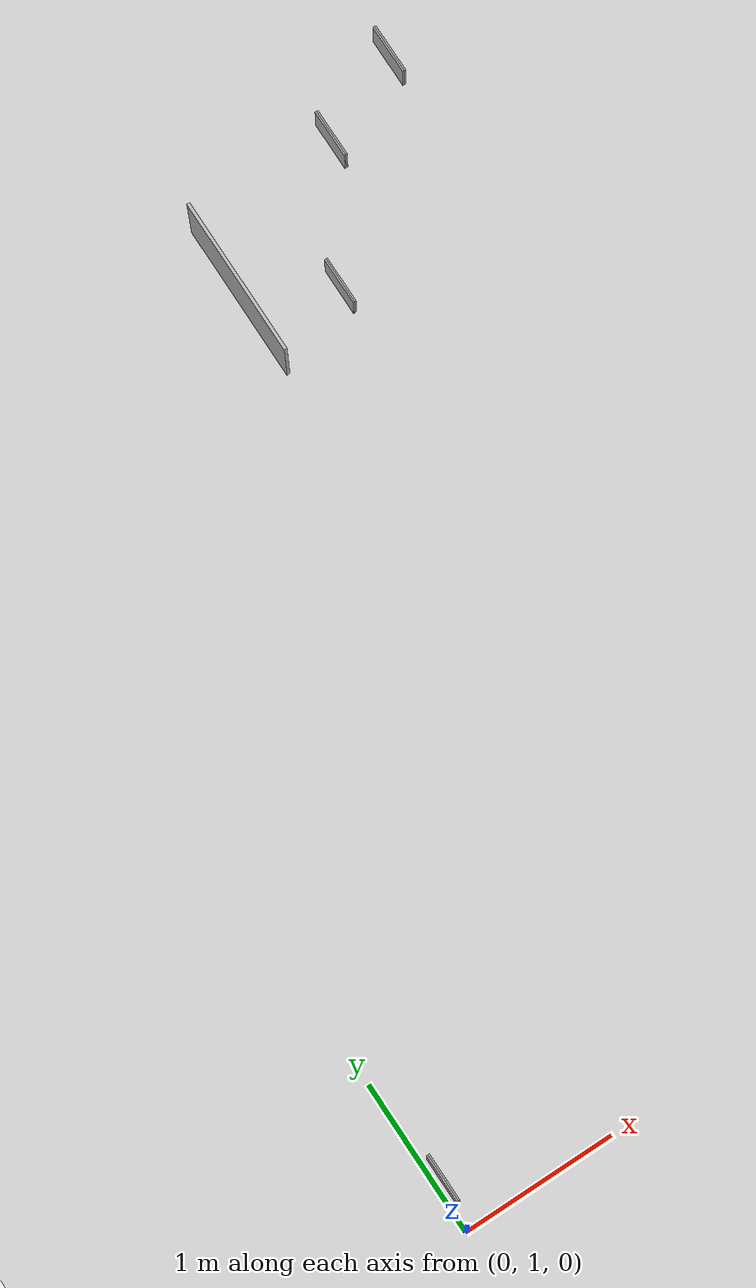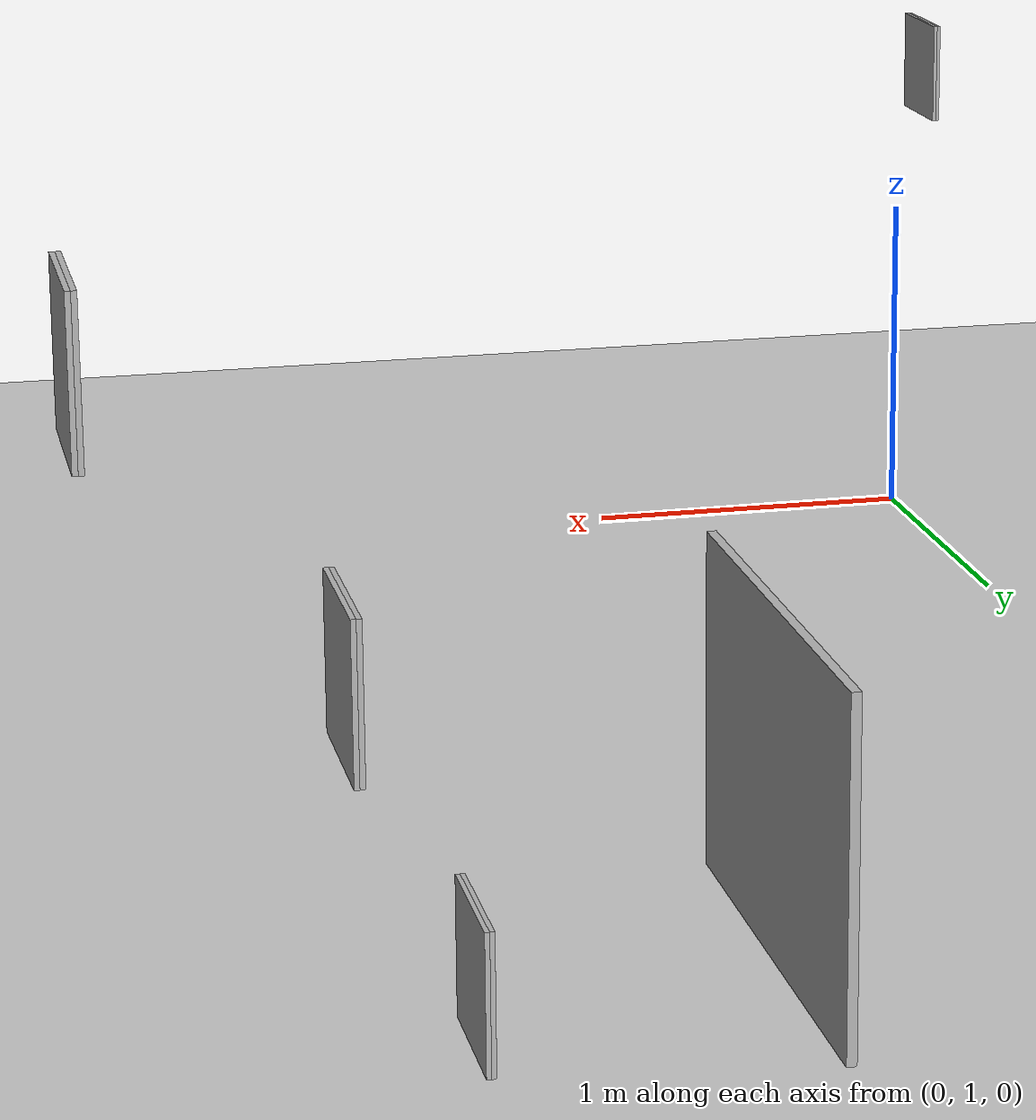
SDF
<sdf version="1.6">
 <world name="GrannyAnnie">
  <light name="sun" type="directional">
   <pose>4 2 10 0 -0 0</pose>
   <diffuse>0.9 0.9 0.9 1</diffuse>
   <specular>0.2 0.2 0.2 1</specular>
   <attenuation>
    <range>1000</range>
    <constant>0.9</constant>
    <linear>0.01</linear>
    <quadratic>0.001</quadratic>
   </attenuation>
   <direction>0 0 -0.9</direction>
   <cast_shadows>0</cast_shadows>
  </light>
  <light name="point_light1" type="point">
   <pose>2.5 1 3 0 -0 0</pose>
   <diffuse>0.6 0.6 0.6 1</diffuse>
   <specular>0.1 0.1 0.1 1</specular>
   <attenuation>
    <range>70</range>
    <linear>0.2</linear>
    <constant>0.7</constant>
    <quadratic>0.01</quadratic>
   </attenuation>
   <cast_shadows>0</cast_shadows>
   <direction>0 0 -1</direction>
  </light>
  <light name="point_light2" type="point">
   <pose>5.68 3.81 3 0 -0 0</pose>
   <diffuse>0.6 0.6 0.6 1</diffuse>
   <specular>0.1 0.1 0.1 1</specular>
   <attenuation>
    <range>50</range>
    <linear>0.2</linear>
    <constant>0.8</constant>
    <quadratic>0.01</quadratic>
   </attenuation>
   <cast_shadows>0</cast_shadows>
   <direction>0 0 -1</direction>
  </light>
  <light name="point_light3" type="point">
   <pose>1.23 6 3 0 -0 0</pose>
   <diffuse>0.6 0.6 0.6 1</diffuse>
   <specular>0.1 0.1 0.1 1</specular>
   <attenuation>
    <range>50</range>
    <linear>0.2</linear>
    <constant>0.8</constant>
    <quadratic>0.01</quadratic>
   </attenuation>
   <cast_shadows>0</cast_shadows>
   <direction>0 0 -1</direction>
  </light>
  <model name="ground_plane">
   <static>1</static>
   <link name="link">
    <collision name="collision">
     <geometry><plane><normal>0 0 1</normal><size>100 100</size></plane></geometry>
     <surface><friction><ode><mu>100</mu><mu2>50</mu2></ode></friction></surface>
    </collision>
    <visual name="visual">
     <cast_shadows>0</cast_shadows>
     <geometry><plane><normal>0 0 1</normal><size>100 100</size></plane></geometry>
     <material>
      <script><uri>file://media/materials/scripts/gazebo.material</uri><name>Gazebo/Grey</name></script>
     </material>
    </visual>
    <velocity_decay><linear>0</linear><angular>0</angular></velocity_decay>
   </link>
  </model>
  <model name="tag_7">
   <pose>3.13317 6.54518 2 1.5708 -0 1.5708</pose>
   <static>1</static>
   <link name="fronttag">
    <pose>0 0 0.01 0 -0 0</pose>
    <collision name="collision"><geometry><box><size>0.3 0.3 0.01</size></box></geometry></collision>
    <visual name="visual">
     <geometry><box><size>0.3 0.3 0.01</size></box></geometry>
     <material>
      <script><uri>file://tags_material/scripts/tags.material</uri><name>Tag36_11_00007</name></script>
     </material>
    </visual>
   </link>
   <link name="backcover">
    <collision name="collision"><geometry><box><size>0.3 0.3 0.01</size></box></geometry></collision>
    <visual name="visual"><geometry><box><size>0.3 0.3 0.01</size></box></geometry></visual>
   </link>
   <static>0</static>
  </model>
  <model name="tag_4">
   <pose>2.68262 6.45608 1.4 1.5708 -0 1.5708</pose>
   <static>1</static>
   <link name="fronttag">
    <pose>0 0 0.01 0 -0 0</pose>
    <collision name="collision"><geometry><box><size>0.3 0.3 0.01</size></box></geometry></collision>
    <visual name="visual">
     <geometry><box><size>0.3 0.3 0.01</size></box></geometry>
     <material>
      <script><uri>file://tags_material/scripts/tags.material</uri><name>Tag36_11_00004</name></script>
     </material>
    </visual>
   </link>
   <link name="backcover">
    <collision name="collision"><geometry><box><size>0.3 0.3 0.01</size></box></geometry></collision>
    <visual name="visual"><geometry><box><size>0.3 0.3 0.01</size></box></geometry></visual>
   </link>
   <static>0</static>
  </model>
  <model name="tag_3">
   <pose>0 1.26 1.51 1.5708 -0 1.5708</pose>
   <static>1</static>
   <link name="fronttag">
    <pose>0 0 0.01 0 -0 0</pose>
    <collision name="collision"><geometry><box><size>0.3 0.3 0.01</size></box></geometry></collision>
    <visual name="visual">
     <geometry><box><size>0.3 0.3 0.01</size></box></geometry>
     <material>
      <script><uri>file://tags_material/scripts/tags.material</uri><name>Tag36_11_00003</name></script>
     </material>
    </visual>
   </link>
   <link name="backcover">
    <collision name="collision"><geometry><box><size>0.3 0.3 0.01</size></box></geometry></collision>
    <visual name="visual"><geometry><box><size>0.3 0.3 0.01</size></box></geometry></visual>
   </link>
   <static>0</static>
  </model>
  <model name="tag_1">
   <pose>2.35636 5.88713 0.58 1.5708 -0 1.5708</pose>
   <static>1</static>
   <link name="fronttag">
    <pose>0 0 0.01 0 -0 0</pose>
    <collision name="collision"><geometry><box><size>0.3 0.3 0.01</size></box></geometry></collision>
    <visual name="visual">
     <geometry><box><size>0.3 0.3 0.01</size></box></geometry>
     <material>
      <script><uri>file://tags_material/scripts/tags.material</uri><name>Tag36_11_00001</name></script>
     </material>
    </visual>
   </link>
   <link name="backcover">
    <collision name="collision"><geometry><box><size>0.3 0.3 0.01</size></box></geometry></collision>
    <visual name="visual"><geometry><box><size>0.3 0.3 0.01</size></box></geometry></visual>
   </link>
   <static>0</static>
  </model>
  <model name="CALIBOARD">
   <pose>1.82164 6.10331 1 0 1.57079 0</pose>
   <static>1</static>
   <link name="link">
    <collision name="collision"><geometry><box><size>0.7 1 0.02</size></box></geometry></collision>
    <visual name="visual">
     <geometry><box><size>0.7 1 0.02</size></box></geometry>
     <material>
      <script><uri>file://tags_material/scripts/tags.material</uri><name>chessboard</name></script>
     </material>
    </visual>
   </link>
   <static>0</static>
  </model>
  <gravity>0 0 -9.8</gravity>
  <magnetic_field>6e-06 2.3e-05 -4.2e-05</magnetic_field>
  <atmosphere type="adiabatic"/>
  <spherical_coordinates>
   <surface_model>EARTH_WGS84</surface_model>
   <latitude_deg>0</latitude_deg>
   <longitude_deg>0</longitude_deg>
   <elevation>0</elevation>
   <heading_deg>0</heading_deg>
  </spherical_coordinates>
  <physics name="default_physics" default="0" type="ode">
   <max_step_size>0.001</max_step_size>
   <real_time_factor>1</real_time_factor>
   <real_time_update_rate>1000</real_time_update_rate>
  </physics>
  <scene><ambient>0.4 0.4 0.4 1</ambient><background>0.7 0.7 0.7 1</background><shadows>1</shadows></scene>
 </world>
</sdf>
